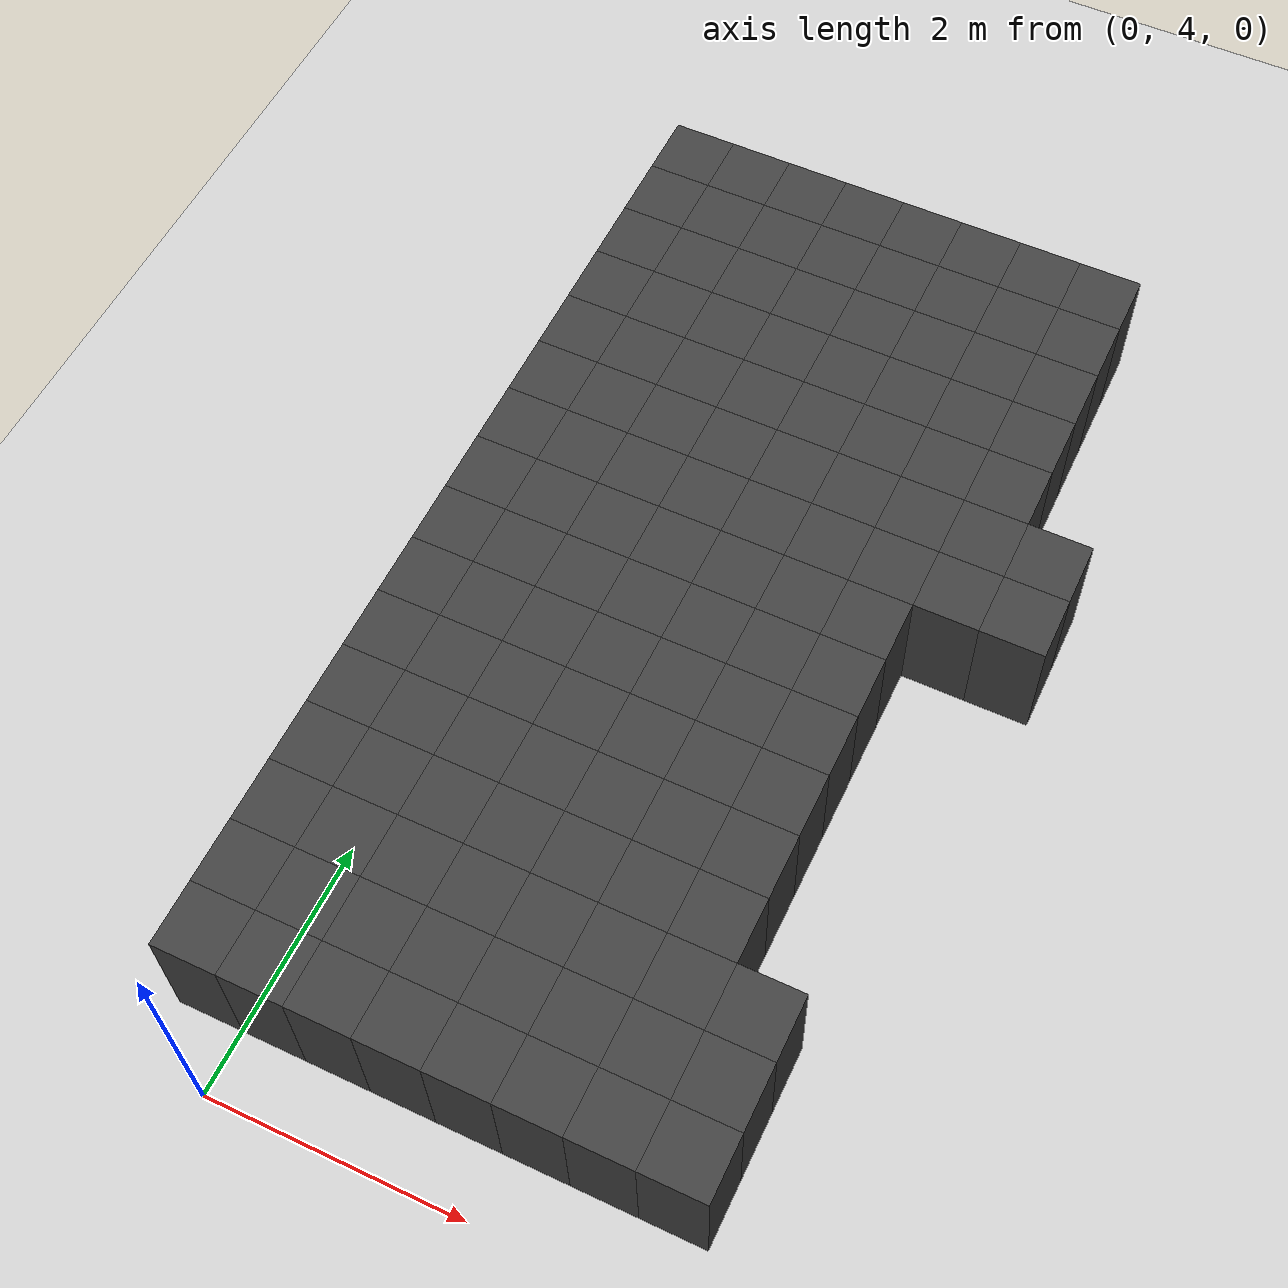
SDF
<sdf version="1.7">
 <world name="map_10726">
  <model name="ground_plane">
   <static>true</static>
   <link name="link">
    <collision name="collision">
     <geometry><plane><normal>0 0 1</normal><size>200 200</size></plane></geometry>
    </collision>
    <visual name="visual">
     <geometry><plane><normal>0 0 1</normal><size>200 200</size></plane></geometry>
     <material><ambient>0.8 0.8 0.8 1</ambient><diffuse>0.8 0.8 0.8 1</diffuse></material>
    </visual>
   </link>
  </model>
  <model name="maze_environment">
   <static>true</static>
   <link name="wall_24">
    <pose>-0.250 12.250 0.500 0 0 0</pose>
    <collision name="col"><geometry><box><size>0.5 0.5 1.0</size></box></geometry></collision>
    <visual name="vis">
     <geometry><box><size>0.5 0.5 1.0</size></box></geometry>
     <material><ambient>0.15 0.15 0.15 1</ambient><diffuse>0.25 0.25 0.25 1</diffuse></material>
    </visual>
   </link>
   <link name="wall_25">
    <pose>0.250 12.250 0.500 0 0 0</pose>
    <collision name="col"><geometry><box><size>0.5 0.5 1.0</size></box></geometry></collision>
    <visual name="vis">
     <geometry><box><size>0.5 0.5 1.0</size></box></geometry>
     <material><ambient>0.15 0.15 0.15 1</ambient><diffuse>0.25 0.25 0.25 1</diffuse></material>
    </visual>
   </link>
   <link name="wall_26">
    <pose>0.750 12.250 0.500 0 0 0</pose>
    <collision name="col"><geometry><box><size>0.5 0.5 1.0</size></box></geometry></collision>
    <visual name="vis">
     <geometry><box><size>0.5 0.5 1.0</size></box></geometry>
     <material><ambient>0.15 0.15 0.15 1</ambient><diffuse>0.25 0.25 0.25 1</diffuse></material>
    </visual>
   </link>
   <link name="wall_27">
    <pose>1.250 12.250 0.500 0 0 0</pose>
    <collision name="col"><geometry><box><size>0.5 0.5 1.0</size></box></geometry></collision>
    <visual name="vis">
     <geometry><box><size>0.5 0.5 1.0</size></box></geometry>
     <material><ambient>0.15 0.15 0.15 1</ambient><diffuse>0.25 0.25 0.25 1</diffuse></material>
    </visual>
   </link>
   <link name="wall_28">
    <pose>1.750 12.250 0.500 0 0 0</pose>
    <collision name="col"><geometry><box><size>0.5 0.5 1.0</size></box></geometry></collision>
    <visual name="vis">
     <geometry><box><size>0.5 0.5 1.0</size></box></geometry>
     <material><ambient>0.15 0.15 0.15 1</ambient><diffuse>0.25 0.25 0.25 1</diffuse></material>
    </visual>
   </link>
   <link name="wall_29">
    <pose>2.250 12.250 0.500 0 0 0</pose>
    <collision name="col"><geometry><box><size>0.5 0.5 1.0</size></box></geometry></collision>
    <visual name="vis">
     <geometry><box><size>0.5 0.5 1.0</size></box></geometry>
     <material><ambient>0.15 0.15 0.15 1</ambient><diffuse>0.25 0.25 0.25 1</diffuse></material>
    </visual>
   </link>
   <link name="wall_30">
    <pose>2.750 12.250 0.500 0 0 0</pose>
    <collision name="col"><geometry><box><size>0.5 0.5 1.0</size></box></geometry></collision>
    <visual name="vis">
     <geometry><box><size>0.5 0.5 1.0</size></box></geometry>
     <material><ambient>0.15 0.15 0.15 1</ambient><diffuse>0.25 0.25 0.25 1</diffuse></material>
    </visual>
   </link>
   <link name="wall_31">
    <pose>3.250 12.250 0.500 0 0 0</pose>
    <collision name="col"><geometry><box><size>0.5 0.5 1.0</size></box></geometry></collision>
    <visual name="vis">
     <geometry><box><size>0.5 0.5 1.0</size></box></geometry>
     <material><ambient>0.15 0.15 0.15 1</ambient><diffuse>0.25 0.25 0.25 1</diffuse></material>
    </visual>
   </link>
   <link name="wall_71">
    <pose>-0.250 11.750 0.500 0 0 0</pose>
    <collision name="col"><geometry><box><size>0.5 0.5 1.0</size></box></geometry></collision>
    <visual name="vis">
     <geometry><box><size>0.5 0.5 1.0</size></box></geometry>
     <material><ambient>0.15 0.15 0.15 1</ambient><diffuse>0.25 0.25 0.25 1</diffuse></material>
    </visual>
   </link>
   <link name="wall_72">
    <pose>0.250 11.750 0.500 0 0 0</pose>
    <collision name="col"><geometry><box><size>0.5 0.5 1.0</size></box></geometry></collision>
    <visual name="vis">
     <geometry><box><size>0.5 0.5 1.0</size></box></geometry>
     <material><ambient>0.15 0.15 0.15 1</ambient><diffuse>0.25 0.25 0.25 1</diffuse></material>
    </visual>
   </link>
   <link name="wall_73">
    <pose>0.750 11.750 0.500 0 0 0</pose>
    <collision name="col"><geometry><box><size>0.5 0.5 1.0</size></box></geometry></collision>
    <visual name="vis">
     <geometry><box><size>0.5 0.5 1.0</size></box></geometry>
     <material><ambient>0.15 0.15 0.15 1</ambient><diffuse>0.25 0.25 0.25 1</diffuse></material>
    </visual>
   </link>
   <link name="wall_74">
    <pose>1.250 11.750 0.500 0 0 0</pose>
    <collision name="col"><geometry><box><size>0.5 0.5 1.0</size></box></geometry></collision>
    <visual name="vis">
     <geometry><box><size>0.5 0.5 1.0</size></box></geometry>
     <material><ambient>0.15 0.15 0.15 1</ambient><diffuse>0.25 0.25 0.25 1</diffuse></material>
    </visual>
   </link>
   <link name="wall_75">
    <pose>1.750 11.750 0.500 0 0 0</pose>
    <collision name="col"><geometry><box><size>0.5 0.5 1.0</size></box></geometry></collision>
    <visual name="vis">
     <geometry><box><size>0.5 0.5 1.0</size></box></geometry>
     <material><ambient>0.15 0.15 0.15 1</ambient><diffuse>0.25 0.25 0.25 1</diffuse></material>
    </visual>
   </link>
   <link name="wall_76">
    <pose>2.250 11.750 0.500 0 0 0</pose>
    <collision name="col"><geometry><box><size>0.5 0.5 1.0</size></box></geometry></collision>
    <visual name="vis">
     <geometry><box><size>0.5 0.5 1.0</size></box></geometry>
     <material><ambient>0.15 0.15 0.15 1</ambient><diffuse>0.25 0.25 0.25 1</diffuse></material>
    </visual>
   </link>
   <link name="wall_77">
    <pose>2.750 11.750 0.500 0 0 0</pose>
    <collision name="col"><geometry><box><size>0.5 0.5 1.0</size></box></geometry></collision>
    <visual name="vis">
     <geometry><box><size>0.5 0.5 1.0</size></box></geometry>
     <material><ambient>0.15 0.15 0.15 1</ambient><diffuse>0.25 0.25 0.25 1</diffuse></material>
    </visual>
   </link>
   <link name="wall_78">
    <pose>3.250 11.750 0.500 0 0 0</pose>
    <collision name="col"><geometry><box><size>0.5 0.5 1.0</size></box></geometry></collision>
    <visual name="vis">
     <geometry><box><size>0.5 0.5 1.0</size></box></geometry>
     <material><ambient>0.15 0.15 0.15 1</ambient><diffuse>0.25 0.25 0.25 1</diffuse></material>
    </visual>
   </link>
   <link name="wall_118">
    <pose>-0.250 11.250 0.500 0 0 0</pose>
    <collision name="col"><geometry><box><size>0.5 0.5 1.0</size></box></geometry></collision>
    <visual name="vis">
     <geometry><box><size>0.5 0.5 1.0</size></box></geometry>
     <material><ambient>0.15 0.15 0.15 1</ambient><diffuse>0.25 0.25 0.25 1</diffuse></material>
    </visual>
   </link>
   <link name="wall_119">
    <pose>0.250 11.250 0.500 0 0 0</pose>
    <collision name="col"><geometry><box><size>0.5 0.5 1.0</size></box></geometry></collision>
    <visual name="vis">
     <geometry><box><size>0.5 0.5 1.0</size></box></geometry>
     <material><ambient>0.15 0.15 0.15 1</ambient><diffuse>0.25 0.25 0.25 1</diffuse></material>
    </visual>
   </link>
   <link name="wall_120">
    <pose>0.750 11.250 0.500 0 0 0</pose>
    <collision name="col"><geometry><box><size>0.5 0.5 1.0</size></box></geometry></collision>
    <visual name="vis">
     <geometry><box><size>0.5 0.5 1.0</size></box></geometry>
     <material><ambient>0.15 0.15 0.15 1</ambient><diffuse>0.25 0.25 0.25 1</diffuse></material>
    </visual>
   </link>
   <link name="wall_121">
    <pose>1.250 11.250 0.500 0 0 0</pose>
    <collision name="col"><geometry><box><size>0.5 0.5 1.0</size></box></geometry></collision>
    <visual name="vis">
     <geometry><box><size>0.5 0.5 1.0</size></box></geometry>
     <material><ambient>0.15 0.15 0.15 1</ambient><diffuse>0.25 0.25 0.25 1</diffuse></material>
    </visual>
   </link>
   <link name="wall_122">
    <pose>1.750 11.250 0.500 0 0 0</pose>
    <collision name="col"><geometry><box><size>0.5 0.5 1.0</size></box></geometry></collision>
    <visual name="vis">
     <geometry><box><size>0.5 0.5 1.0</size></box></geometry>
     <material><ambient>0.15 0.15 0.15 1</ambient><diffuse>0.25 0.25 0.25 1</diffuse></material>
    </visual>
   </link>
   <link name="wall_123">
    <pose>2.250 11.250 0.500 0 0 0</pose>
    <collision name="col"><geometry><box><size>0.5 0.5 1.0</size></box></geometry></collision>
    <visual name="vis">
     <geometry><box><size>0.5 0.5 1.0</size></box></geometry>
     <material><ambient>0.15 0.15 0.15 1</ambient><diffuse>0.25 0.25 0.25 1</diffuse></material>
    </visual>
   </link>
   <link name="wall_124">
    <pose>2.750 11.250 0.500 0 0 0</pose>
    <collision name="col"><geometry><box><size>0.5 0.5 1.0</size></box></geometry></collision>
    <visual name="vis">
     <geometry><box><size>0.5 0.5 1.0</size></box></geometry>
     <material><ambient>0.15 0.15 0.15 1</ambient><diffuse>0.25 0.25 0.25 1</diffuse></material>
    </visual>
   </link>
   <link name="wall_125">
    <pose>3.250 11.250 0.500 0 0 0</pose>
    <collision name="col"><geometry><box><size>0.5 0.5 1.0</size></box></geometry></collision>
    <visual name="vis">
     <geometry><box><size>0.5 0.5 1.0</size></box></geometry>
     <material><ambient>0.15 0.15 0.15 1</ambient><diffuse>0.25 0.25 0.25 1</diffuse></material>
    </visual>
   </link>
   <link name="wall_165">
    <pose>-0.250 10.750 0.500 0 0 0</pose>
    <collision name="col"><geometry><box><size>0.5 0.5 1.0</size></box></geometry></collision>
    <visual name="vis">
     <geometry><box><size>0.5 0.5 1.0</size></box></geometry>
     <material><ambient>0.15 0.15 0.15 1</ambient><diffuse>0.25 0.25 0.25 1</diffuse></material>
    </visual>
   </link>
   <link name="wall_166">
    <pose>0.250 10.750 0.500 0 0 0</pose>
    <collision name="col"><geometry><box><size>0.5 0.5 1.0</size></box></geometry></collision>
    <visual name="vis">
     <geometry><box><size>0.5 0.5 1.0</size></box></geometry>
     <material><ambient>0.15 0.15 0.15 1</ambient><diffuse>0.25 0.25 0.25 1</diffuse></material>
    </visual>
   </link>
   <link name="wall_167">
    <pose>0.750 10.750 0.500 0 0 0</pose>
    <collision name="col"><geometry><box><size>0.5 0.5 1.0</size></box></geometry></collision>
    <visual name="vis">
     <geometry><box><size>0.5 0.5 1.0</size></box></geometry>
     <material><ambient>0.15 0.15 0.15 1</ambient><diffuse>0.25 0.25 0.25 1</diffuse></material>
    </visual>
   </link>
   <link name="wall_168">
    <pose>1.250 10.750 0.500 0 0 0</pose>
    <collision name="col"><geometry><box><size>0.5 0.5 1.0</size></box></geometry></collision>
    <visual name="vis">
     <geometry><box><size>0.5 0.5 1.0</size></box></geometry>
     <material><ambient>0.15 0.15 0.15 1</ambient><diffuse>0.25 0.25 0.25 1</diffuse></material>
    </visual>
   </link>
   <link name="wall_169">
    <pose>1.750 10.750 0.500 0 0 0</pose>
    <collision name="col"><geometry><box><size>0.5 0.5 1.0</size></box></geometry></collision>
    <visual name="vis">
     <geometry><box><size>0.5 0.5 1.0</size></box></geometry>
     <material><ambient>0.15 0.15 0.15 1</ambient><diffuse>0.25 0.25 0.25 1</diffuse></material>
    </visual>
   </link>
   <link name="wall_170">
    <pose>2.250 10.750 0.500 0 0 0</pose>
    <collision name="col"><geometry><box><size>0.5 0.5 1.0</size></box></geometry></collision>
    <visual name="vis">
     <geometry><box><size>0.5 0.5 1.0</size></box></geometry>
     <material><ambient>0.15 0.15 0.15 1</ambient><diffuse>0.25 0.25 0.25 1</diffuse></material>
    </visual>
   </link>
   <link name="wall_171">
    <pose>2.750 10.750 0.500 0 0 0</pose>
    <collision name="col"><geometry><box><size>0.5 0.5 1.0</size></box></geometry></collision>
    <visual name="vis">
     <geometry><box><size>0.5 0.5 1.0</size></box></geometry>
     <material><ambient>0.15 0.15 0.15 1</ambient><diffuse>0.25 0.25 0.25 1</diffuse></material>
    </visual>
   </link>
   <link name="wall_172">
    <pose>3.250 10.750 0.500 0 0 0</pose>
    <collision name="col"><geometry><box><size>0.5 0.5 1.0</size></box></geometry></collision>
    <visual name="vis">
     <geometry><box><size>0.5 0.5 1.0</size></box></geometry>
     <material><ambient>0.15 0.15 0.15 1</ambient><diffuse>0.25 0.25 0.25 1</diffuse></material>
    </visual>
   </link>
   <link name="wall_214">
    <pose>-0.250 10.250 0.500 0 0 0</pose>
    <collision name="col"><geometry><box><size>0.5 0.5 1.0</size></box></geometry></collision>
    <visual name="vis">
     <geometry><box><size>0.5 0.5 1.0</size></box></geometry>
     <material><ambient>0.15 0.15 0.15 1</ambient><diffuse>0.25 0.25 0.25 1</diffuse></material>
    </visual>
   </link>
   <link name="wall_215">
    <pose>0.250 10.250 0.500 0 0 0</pose>
    <collision name="col"><geometry><box><size>0.5 0.5 1.0</size></box></geometry></collision>
    <visual name="vis">
     <geometry><box><size>0.5 0.5 1.0</size></box></geometry>
     <material><ambient>0.15 0.15 0.15 1</ambient><diffuse>0.25 0.25 0.25 1</diffuse></material>
    </visual>
   </link>
   <link name="wall_216">
    <pose>0.750 10.250 0.500 0 0 0</pose>
    <collision name="col"><geometry><box><size>0.5 0.5 1.0</size></box></geometry></collision>
    <visual name="vis">
     <geometry><box><size>0.5 0.5 1.0</size></box></geometry>
     <material><ambient>0.15 0.15 0.15 1</ambient><diffuse>0.25 0.25 0.25 1</diffuse></material>
    </visual>
   </link>
   <link name="wall_217">
    <pose>1.250 10.250 0.500 0 0 0</pose>
    <collision name="col"><geometry><box><size>0.5 0.5 1.0</size></box></geometry></collision>
    <visual name="vis">
     <geometry><box><size>0.5 0.5 1.0</size></box></geometry>
     <material><ambient>0.15 0.15 0.15 1</ambient><diffuse>0.25 0.25 0.25 1</diffuse></material>
    </visual>
   </link>
   <link name="wall_218">
    <pose>1.750 10.250 0.500 0 0 0</pose>
    <collision name="col"><geometry><box><size>0.5 0.5 1.0</size></box></geometry></collision>
    <visual name="vis">
     <geometry><box><size>0.5 0.5 1.0</size></box></geometry>
     <material><ambient>0.15 0.15 0.15 1</ambient><diffuse>0.25 0.25 0.25 1</diffuse></material>
    </visual>
   </link>
   <link name="wall_219">
    <pose>2.250 10.250 0.500 0 0 0</pose>
    <collision name="col"><geometry><box><size>0.5 0.5 1.0</size></box></geometry></collision>
    <visual name="vis">
     <geometry><box><size>0.5 0.5 1.0</size></box></geometry>
     <material><ambient>0.15 0.15 0.15 1</ambient><diffuse>0.25 0.25 0.25 1</diffuse></material>
    </visual>
   </link>
   <link name="wall_220">
    <pose>2.750 10.250 0.500 0 0 0</pose>
    <collision name="col"><geometry><box><size>0.5 0.5 1.0</size></box></geometry></collision>
    <visual name="vis">
     <geometry><box><size>0.5 0.5 1.0</size></box></geometry>
     <material><ambient>0.15 0.15 0.15 1</ambient><diffuse>0.25 0.25 0.25 1</diffuse></material>
    </visual>
   </link>
   <link name="wall_221">
    <pose>3.250 10.250 0.500 0 0 0</pose>
    <collision name="col"><geometry><box><size>0.5 0.5 1.0</size></box></geometry></collision>
    <visual name="vis">
     <geometry><box><size>0.5 0.5 1.0</size></box></geometry>
     <material><ambient>0.15 0.15 0.15 1</ambient><diffuse>0.25 0.25 0.25 1</diffuse></material>
    </visual>
   </link>
   <link name="wall_263">
    <pose>-0.250 9.750 0.500 0 0 0</pose>
    <collision name="col"><geometry><box><size>0.5 0.5 1.0</size></box></geometry></collision>
    <visual name="vis">
     <geometry><box><size>0.5 0.5 1.0</size></box></geometry>
     <material><ambient>0.15 0.15 0.15 1</ambient><diffuse>0.25 0.25 0.25 1</diffuse></material>
    </visual>
   </link>
   <link name="wall_264">
    <pose>0.250 9.750 0.500 0 0 0</pose>
    <collision name="col"><geometry><box><size>0.5 0.5 1.0</size></box></geometry></collision>
    <visual name="vis">
     <geometry><box><size>0.5 0.5 1.0</size></box></geometry>
     <material><ambient>0.15 0.15 0.15 1</ambient><diffuse>0.25 0.25 0.25 1</diffuse></material>
    </visual>
   </link>
   <link name="wall_265">
    <pose>0.750 9.750 0.500 0 0 0</pose>
    <collision name="col"><geometry><box><size>0.5 0.5 1.0</size></box></geometry></collision>
    <visual name="vis">
     <geometry><box><size>0.5 0.5 1.0</size></box></geometry>
     <material><ambient>0.15 0.15 0.15 1</ambient><diffuse>0.25 0.25 0.25 1</diffuse></material>
    </visual>
   </link>
   <link name="wall_266">
    <pose>1.250 9.750 0.500 0 0 0</pose>
    <collision name="col"><geometry><box><size>0.5 0.5 1.0</size></box></geometry></collision>
    <visual name="vis">
     <geometry><box><size>0.5 0.5 1.0</size></box></geometry>
     <material><ambient>0.15 0.15 0.15 1</ambient><diffuse>0.25 0.25 0.25 1</diffuse></material>
    </visual>
   </link>
   <link name="wall_267">
    <pose>1.750 9.750 0.500 0 0 0</pose>
    <collision name="col"><geometry><box><size>0.5 0.5 1.0</size></box></geometry></collision>
    <visual name="vis">
     <geometry><box><size>0.5 0.5 1.0</size></box></geometry>
     <material><ambient>0.15 0.15 0.15 1</ambient><diffuse>0.25 0.25 0.25 1</diffuse></material>
    </visual>
   </link>
   <link name="wall_268">
    <pose>2.250 9.750 0.500 0 0 0</pose>
    <collision name="col"><geometry><box><size>0.5 0.5 1.0</size></box></geometry></collision>
    <visual name="vis">
     <geometry><box><size>0.5 0.5 1.0</size></box></geometry>
     <material><ambient>0.15 0.15 0.15 1</ambient><diffuse>0.25 0.25 0.25 1</diffuse></material>
    </visual>
   </link>
   <link name="wall_269">
    <pose>2.750 9.750 0.500 0 0 0</pose>
    <collision name="col"><geometry><box><size>0.5 0.5 1.0</size></box></geometry></collision>
    <visual name="vis">
     <geometry><box><size>0.5 0.5 1.0</size></box></geometry>
     <material><ambient>0.15 0.15 0.15 1</ambient><diffuse>0.25 0.25 0.25 1</diffuse></material>
    </visual>
   </link>
   <link name="wall_270">
    <pose>3.250 9.750 0.500 0 0 0</pose>
    <collision name="col"><geometry><box><size>0.5 0.5 1.0</size></box></geometry></collision>
    <visual name="vis">
     <geometry><box><size>0.5 0.5 1.0</size></box></geometry>
     <material><ambient>0.15 0.15 0.15 1</ambient><diffuse>0.25 0.25 0.25 1</diffuse></material>
    </visual>
   </link>
   <link name="wall_271">
    <pose>3.750 9.750 0.500 0 0 0</pose>
    <collision name="col"><geometry><box><size>0.5 0.5 1.0</size></box></geometry></collision>
    <visual name="vis">
     <geometry><box><size>0.5 0.5 1.0</size></box></geometry>
     <material><ambient>0.15 0.15 0.15 1</ambient><diffuse>0.25 0.25 0.25 1</diffuse></material>
    </visual>
   </link>
   <link name="wall_312">
    <pose>-0.250 9.250 0.500 0 0 0</pose>
    <collision name="col"><geometry><box><size>0.5 0.5 1.0</size></box></geometry></collision>
    <visual name="vis">
     <geometry><box><size>0.5 0.5 1.0</size></box></geometry>
     <material><ambient>0.15 0.15 0.15 1</ambient><diffuse>0.25 0.25 0.25 1</diffuse></material>
    </visual>
   </link>
   <link name="wall_313">
    <pose>0.250 9.250 0.500 0 0 0</pose>
    <collision name="col"><geometry><box><size>0.5 0.5 1.0</size></box></geometry></collision>
    <visual name="vis">
     <geometry><box><size>0.5 0.5 1.0</size></box></geometry>
     <material><ambient>0.15 0.15 0.15 1</ambient><diffuse>0.25 0.25 0.25 1</diffuse></material>
    </visual>
   </link>
   <link name="wall_314">
    <pose>0.750 9.250 0.500 0 0 0</pose>
    <collision name="col"><geometry><box><size>0.5 0.5 1.0</size></box></geometry></collision>
    <visual name="vis">
     <geometry><box><size>0.5 0.5 1.0</size></box></geometry>
     <material><ambient>0.15 0.15 0.15 1</ambient><diffuse>0.25 0.25 0.25 1</diffuse></material>
    </visual>
   </link>
   <link name="wall_315">
    <pose>1.250 9.250 0.500 0 0 0</pose>
    <collision name="col"><geometry><box><size>0.5 0.5 1.0</size></box></geometry></collision>
    <visual name="vis">
     <geometry><box><size>0.5 0.5 1.0</size></box></geometry>
     <material><ambient>0.15 0.15 0.15 1</ambient><diffuse>0.25 0.25 0.25 1</diffuse></material>
    </visual>
   </link>
   <link name="wall_316">
    <pose>1.750 9.250 0.500 0 0 0</pose>
    <collision name="col"><geometry><box><size>0.5 0.5 1.0</size></box></geometry></collision>
    <visual name="vis">
     <geometry><box><size>0.5 0.5 1.0</size></box></geometry>
     <material><ambient>0.15 0.15 0.15 1</ambient><diffuse>0.25 0.25 0.25 1</diffuse></material>
    </visual>
   </link>
   <link name="wall_317">
    <pose>2.250 9.250 0.500 0 0 0</pose>
    <collision name="col"><geometry><box><size>0.5 0.5 1.0</size></box></geometry></collision>
    <visual name="vis">
     <geometry><box><size>0.5 0.5 1.0</size></box></geometry>
     <material><ambient>0.15 0.15 0.15 1</ambient><diffuse>0.25 0.25 0.25 1</diffuse></material>
    </visual>
   </link>
   <link name="wall_318">
    <pose>2.750 9.250 0.500 0 0 0</pose>
    <collision name="col"><geometry><box><size>0.5 0.5 1.0</size></box></geometry></collision>
    <visual name="vis">
     <geometry><box><size>0.5 0.5 1.0</size></box></geometry>
     <material><ambient>0.15 0.15 0.15 1</ambient><diffuse>0.25 0.25 0.25 1</diffuse></material>
    </visual>
   </link>
   <link name="wall_319">
    <pose>3.250 9.250 0.500 0 0 0</pose>
    <collision name="col"><geometry><box><size>0.5 0.5 1.0</size></box></geometry></collision>
    <visual name="vis">
     <geometry><box><size>0.5 0.5 1.0</size></box></geometry>
     <material><ambient>0.15 0.15 0.15 1</ambient><diffuse>0.25 0.25 0.25 1</diffuse></material>
    </visual>
   </link>
   <link name="wall_320">
    <pose>3.750 9.250 0.500 0 0 0</pose>
    <collision name="col"><geometry><box><size>0.5 0.5 1.0</size></box></geometry></collision>
    <visual name="vis">
     <geometry><box><size>0.5 0.5 1.0</size></box></geometry>
     <material><ambient>0.15 0.15 0.15 1</ambient><diffuse>0.25 0.25 0.25 1</diffuse></material>
    </visual>
   </link>
   <link name="wall_361">
    <pose>-0.250 8.750 0.500 0 0 0</pose>
    <collision name="col"><geometry><box><size>0.5 0.5 1.0</size></box></geometry></collision>
    <visual name="vis">
     <geometry><box><size>0.5 0.5 1.0</size></box></geometry>
     <material><ambient>0.15 0.15 0.15 1</ambient><diffuse>0.25 0.25 0.25 1</diffuse></material>
    </visual>
   </link>
   <link name="wall_362">
    <pose>0.250 8.750 0.500 0 0 0</pose>
    <collision name="col"><geometry><box><size>0.5 0.5 1.0</size></box></geometry></collision>
    <visual name="vis">
     <geometry><box><size>0.5 0.5 1.0</size></box></geometry>
     <material><ambient>0.15 0.15 0.15 1</ambient><diffuse>0.25 0.25 0.25 1</diffuse></material>
    </visual>
   </link>
   <link name="wall_363">
    <pose>0.750 8.750 0.500 0 0 0</pose>
    <collision name="col"><geometry><box><size>0.5 0.5 1.0</size></box></geometry></collision>
    <visual name="vis">
     <geometry><box><size>0.5 0.5 1.0</size></box></geometry>
     <material><ambient>0.15 0.15 0.15 1</ambient><diffuse>0.25 0.25 0.25 1</diffuse></material>
    </visual>
   </link>
   <link name="wall_364">
    <pose>1.250 8.750 0.500 0 0 0</pose>
    <collision name="col"><geometry><box><size>0.5 0.5 1.0</size></box></geometry></collision>
    <visual name="vis">
     <geometry><box><size>0.5 0.5 1.0</size></box></geometry>
     <material><ambient>0.15 0.15 0.15 1</ambient><diffuse>0.25 0.25 0.25 1</diffuse></material>
    </visual>
   </link>
   <link name="wall_365">
    <pose>1.750 8.750 0.500 0 0 0</pose>
    <collision name="col"><geometry><box><size>0.5 0.5 1.0</size></box></geometry></collision>
    <visual name="vis">
     <geometry><box><size>0.5 0.5 1.0</size></box></geometry>
     <material><ambient>0.15 0.15 0.15 1</ambient><diffuse>0.25 0.25 0.25 1</diffuse></material>
    </visual>
   </link>
   <link name="wall_366">
    <pose>2.250 8.750 0.500 0 0 0</pose>
    <collision name="col"><geometry><box><size>0.5 0.5 1.0</size></box></geometry></collision>
    <visual name="vis">
     <geometry><box><size>0.5 0.5 1.0</size></box></geometry>
     <material><ambient>0.15 0.15 0.15 1</ambient><diffuse>0.25 0.25 0.25 1</diffuse></material>
    </visual>
   </link>
   <link name="wall_367">
    <pose>2.750 8.750 0.500 0 0 0</pose>
    <collision name="col"><geometry><box><size>0.5 0.5 1.0</size></box></geometry></collision>
    <visual name="vis">
     <geometry><box><size>0.5 0.5 1.0</size></box></geometry>
     <material><ambient>0.15 0.15 0.15 1</ambient><diffuse>0.25 0.25 0.25 1</diffuse></material>
    </visual>
   </link>
   <link name="wall_402">
    <pose>-0.250 8.250 0.500 0 0 0</pose>
    <collision name="col"><geometry><box><size>0.5 0.5 1.0</size></box></geometry></collision>
    <visual name="vis">
     <geometry><box><size>0.5 0.5 1.0</size></box></geometry>
     <material><ambient>0.15 0.15 0.15 1</ambient><diffuse>0.25 0.25 0.25 1</diffuse></material>
    </visual>
   </link>
   <link name="wall_403">
    <pose>0.250 8.250 0.500 0 0 0</pose>
    <collision name="col"><geometry><box><size>0.5 0.5 1.0</size></box></geometry></collision>
    <visual name="vis">
     <geometry><box><size>0.5 0.5 1.0</size></box></geometry>
     <material><ambient>0.15 0.15 0.15 1</ambient><diffuse>0.25 0.25 0.25 1</diffuse></material>
    </visual>
   </link>
   <link name="wall_404">
    <pose>0.750 8.250 0.500 0 0 0</pose>
    <collision name="col"><geometry><box><size>0.5 0.5 1.0</size></box></geometry></collision>
    <visual name="vis">
     <geometry><box><size>0.5 0.5 1.0</size></box></geometry>
     <material><ambient>0.15 0.15 0.15 1</ambient><diffuse>0.25 0.25 0.25 1</diffuse></material>
    </visual>
   </link>
   <link name="wall_405">
    <pose>1.250 8.250 0.500 0 0 0</pose>
    <collision name="col"><geometry><box><size>0.5 0.5 1.0</size></box></geometry></collision>
    <visual name="vis">
     <geometry><box><size>0.5 0.5 1.0</size></box></geometry>
     <material><ambient>0.15 0.15 0.15 1</ambient><diffuse>0.25 0.25 0.25 1</diffuse></material>
    </visual>
   </link>
   <link name="wall_406">
    <pose>1.750 8.250 0.500 0 0 0</pose>
    <collision name="col"><geometry><box><size>0.5 0.5 1.0</size></box></geometry></collision>
    <visual name="vis">
     <geometry><box><size>0.5 0.5 1.0</size></box></geometry>
     <material><ambient>0.15 0.15 0.15 1</ambient><diffuse>0.25 0.25 0.25 1</diffuse></material>
    </visual>
   </link>
   <link name="wall_407">
    <pose>2.250 8.250 0.500 0 0 0</pose>
    <collision name="col"><geometry><box><size>0.5 0.5 1.0</size></box></geometry></collision>
    <visual name="vis">
     <geometry><box><size>0.5 0.5 1.0</size></box></geometry>
     <material><ambient>0.15 0.15 0.15 1</ambient><diffuse>0.25 0.25 0.25 1</diffuse></material>
    </visual>
   </link>
   <link name="wall_408">
    <pose>2.750 8.250 0.500 0 0 0</pose>
    <collision name="col"><geometry><box><size>0.5 0.5 1.0</size></box></geometry></collision>
    <visual name="vis">
     <geometry><box><size>0.5 0.5 1.0</size></box></geometry>
     <material><ambient>0.15 0.15 0.15 1</ambient><diffuse>0.25 0.25 0.25 1</diffuse></material>
    </visual>
   </link>
   <link name="wall_443">
    <pose>-0.250 7.750 0.500 0 0 0</pose>
    <collision name="col"><geometry><box><size>0.5 0.5 1.0</size></box></geometry></collision>
    <visual name="vis">
     <geometry><box><size>0.5 0.5 1.0</size></box></geometry>
     <material><ambient>0.15 0.15 0.15 1</ambient><diffuse>0.25 0.25 0.25 1</diffuse></material>
    </visual>
   </link>
   <link name="wall_444">
    <pose>0.250 7.750 0.500 0 0 0</pose>
    <collision name="col"><geometry><box><size>0.5 0.5 1.0</size></box></geometry></collision>
    <visual name="vis">
     <geometry><box><size>0.5 0.5 1.0</size></box></geometry>
     <material><ambient>0.15 0.15 0.15 1</ambient><diffuse>0.25 0.25 0.25 1</diffuse></material>
    </visual>
   </link>
   <link name="wall_445">
    <pose>0.750 7.750 0.500 0 0 0</pose>
    <collision name="col"><geometry><box><size>0.5 0.5 1.0</size></box></geometry></collision>
    <visual name="vis">
     <geometry><box><size>0.5 0.5 1.0</size></box></geometry>
     <material><ambient>0.15 0.15 0.15 1</ambient><diffuse>0.25 0.25 0.25 1</diffuse></material>
    </visual>
   </link>
   <link name="wall_446">
    <pose>1.250 7.750 0.500 0 0 0</pose>
    <collision name="col"><geometry><box><size>0.5 0.5 1.0</size></box></geometry></collision>
    <visual name="vis">
     <geometry><box><size>0.5 0.5 1.0</size></box></geometry>
     <material><ambient>0.15 0.15 0.15 1</ambient><diffuse>0.25 0.25 0.25 1</diffuse></material>
    </visual>
   </link>
   <link name="wall_447">
    <pose>1.750 7.750 0.500 0 0 0</pose>
    <collision name="col"><geometry><box><size>0.5 0.5 1.0</size></box></geometry></collision>
    <visual name="vis">
     <geometry><box><size>0.5 0.5 1.0</size></box></geometry>
     <material><ambient>0.15 0.15 0.15 1</ambient><diffuse>0.25 0.25 0.25 1</diffuse></material>
    </visual>
   </link>
   <link name="wall_448">
    <pose>2.250 7.750 0.500 0 0 0</pose>
    <collision name="col"><geometry><box><size>0.5 0.5 1.0</size></box></geometry></collision>
    <visual name="vis">
     <geometry><box><size>0.5 0.5 1.0</size></box></geometry>
     <material><ambient>0.15 0.15 0.15 1</ambient><diffuse>0.25 0.25 0.25 1</diffuse></material>
    </visual>
   </link>
   <link name="wall_449">
    <pose>2.750 7.750 0.500 0 0 0</pose>
    <collision name="col"><geometry><box><size>0.5 0.5 1.0</size></box></geometry></collision>
    <visual name="vis">
     <geometry><box><size>0.5 0.5 1.0</size></box></geometry>
     <material><ambient>0.15 0.15 0.15 1</ambient><diffuse>0.25 0.25 0.25 1</diffuse></material>
    </visual>
   </link>
   <link name="wall_484">
    <pose>-0.250 7.250 0.500 0 0 0</pose>
    <collision name="col"><geometry><box><size>0.5 0.5 1.0</size></box></geometry></collision>
    <visual name="vis">
     <geometry><box><size>0.5 0.5 1.0</size></box></geometry>
     <material><ambient>0.15 0.15 0.15 1</ambient><diffuse>0.25 0.25 0.25 1</diffuse></material>
    </visual>
   </link>
   <link name="wall_485">
    <pose>0.250 7.250 0.500 0 0 0</pose>
    <collision name="col"><geometry><box><size>0.5 0.5 1.0</size></box></geometry></collision>
    <visual name="vis">
     <geometry><box><size>0.5 0.5 1.0</size></box></geometry>
     <material><ambient>0.15 0.15 0.15 1</ambient><diffuse>0.25 0.25 0.25 1</diffuse></material>
    </visual>
   </link>
   <link name="wall_486">
    <pose>0.750 7.250 0.500 0 0 0</pose>
    <collision name="col"><geometry><box><size>0.5 0.5 1.0</size></box></geometry></collision>
    <visual name="vis">
     <geometry><box><size>0.5 0.5 1.0</size></box></geometry>
     <material><ambient>0.15 0.15 0.15 1</ambient><diffuse>0.25 0.25 0.25 1</diffuse></material>
    </visual>
   </link>
   <link name="wall_487">
    <pose>1.250 7.250 0.500 0 0 0</pose>
    <collision name="col"><geometry><box><size>0.5 0.5 1.0</size></box></geometry></collision>
    <visual name="vis">
     <geometry><box><size>0.5 0.5 1.0</size></box></geometry>
     <material><ambient>0.15 0.15 0.15 1</ambient><diffuse>0.25 0.25 0.25 1</diffuse></material>
    </visual>
   </link>
   <link name="wall_488">
    <pose>1.750 7.250 0.500 0 0 0</pose>
    <collision name="col"><geometry><box><size>0.5 0.5 1.0</size></box></geometry></collision>
    <visual name="vis">
     <geometry><box><size>0.5 0.5 1.0</size></box></geometry>
     <material><ambient>0.15 0.15 0.15 1</ambient><diffuse>0.25 0.25 0.25 1</diffuse></material>
    </visual>
   </link>
   <link name="wall_489">
    <pose>2.250 7.250 0.500 0 0 0</pose>
    <collision name="col"><geometry><box><size>0.5 0.5 1.0</size></box></geometry></collision>
    <visual name="vis">
     <geometry><box><size>0.5 0.5 1.0</size></box></geometry>
     <material><ambient>0.15 0.15 0.15 1</ambient><diffuse>0.25 0.25 0.25 1</diffuse></material>
    </visual>
   </link>
   <link name="wall_490">
    <pose>2.750 7.250 0.500 0 0 0</pose>
    <collision name="col"><geometry><box><size>0.5 0.5 1.0</size></box></geometry></collision>
    <visual name="vis">
     <geometry><box><size>0.5 0.5 1.0</size></box></geometry>
     <material><ambient>0.15 0.15 0.15 1</ambient><diffuse>0.25 0.25 0.25 1</diffuse></material>
    </visual>
   </link>
   <link name="wall_525">
    <pose>-0.250 6.750 0.500 0 0 0</pose>
    <collision name="col"><geometry><box><size>0.5 0.5 1.0</size></box></geometry></collision>
    <visual name="vis">
     <geometry><box><size>0.5 0.5 1.0</size></box></geometry>
     <material><ambient>0.15 0.15 0.15 1</ambient><diffuse>0.25 0.25 0.25 1</diffuse></material>
    </visual>
   </link>
   <link name="wall_526">
    <pose>0.250 6.750 0.500 0 0 0</pose>
    <collision name="col"><geometry><box><size>0.5 0.5 1.0</size></box></geometry></collision>
    <visual name="vis">
     <geometry><box><size>0.5 0.5 1.0</size></box></geometry>
     <material><ambient>0.15 0.15 0.15 1</ambient><diffuse>0.25 0.25 0.25 1</diffuse></material>
    </visual>
   </link>
   <link name="wall_527">
    <pose>0.750 6.750 0.500 0 0 0</pose>
    <collision name="col"><geometry><box><size>0.5 0.5 1.0</size></box></geometry></collision>
    <visual name="vis">
     <geometry><box><size>0.5 0.5 1.0</size></box></geometry>
     <material><ambient>0.15 0.15 0.15 1</ambient><diffuse>0.25 0.25 0.25 1</diffuse></material>
    </visual>
   </link>
   <link name="wall_528">
    <pose>1.250 6.750 0.500 0 0 0</pose>
    <collision name="col"><geometry><box><size>0.5 0.5 1.0</size></box></geometry></collision>
    <visual name="vis">
     <geometry><box><size>0.5 0.5 1.0</size></box></geometry>
     <material><ambient>0.15 0.15 0.15 1</ambient><diffuse>0.25 0.25 0.25 1</diffuse></material>
    </visual>
   </link>
   <link name="wall_529">
    <pose>1.750 6.750 0.500 0 0 0</pose>
    <collision name="col"><geometry><box><size>0.5 0.5 1.0</size></box></geometry></collision>
    <visual name="vis">
     <geometry><box><size>0.5 0.5 1.0</size></box></geometry>
     <material><ambient>0.15 0.15 0.15 1</ambient><diffuse>0.25 0.25 0.25 1</diffuse></material>
    </visual>
   </link>
   <link name="wall_530">
    <pose>2.250 6.750 0.500 0 0 0</pose>
    <collision name="col"><geometry><box><size>0.5 0.5 1.0</size></box></geometry></collision>
    <visual name="vis">
     <geometry><box><size>0.5 0.5 1.0</size></box></geometry>
     <material><ambient>0.15 0.15 0.15 1</ambient><diffuse>0.25 0.25 0.25 1</diffuse></material>
    </visual>
   </link>
   <link name="wall_531">
    <pose>2.750 6.750 0.500 0 0 0</pose>
    <collision name="col"><geometry><box><size>0.5 0.5 1.0</size></box></geometry></collision>
    <visual name="vis">
     <geometry><box><size>0.5 0.5 1.0</size></box></geometry>
     <material><ambient>0.15 0.15 0.15 1</ambient><diffuse>0.25 0.25 0.25 1</diffuse></material>
    </visual>
   </link>
   <link name="wall_566">
    <pose>-0.250 6.250 0.500 0 0 0</pose>
    <collision name="col"><geometry><box><size>0.5 0.5 1.0</size></box></geometry></collision>
    <visual name="vis">
     <geometry><box><size>0.5 0.5 1.0</size></box></geometry>
     <material><ambient>0.15 0.15 0.15 1</ambient><diffuse>0.25 0.25 0.25 1</diffuse></material>
    </visual>
   </link>
   <link name="wall_567">
    <pose>0.250 6.250 0.500 0 0 0</pose>
    <collision name="col"><geometry><box><size>0.5 0.5 1.0</size></box></geometry></collision>
    <visual name="vis">
     <geometry><box><size>0.5 0.5 1.0</size></box></geometry>
     <material><ambient>0.15 0.15 0.15 1</ambient><diffuse>0.25 0.25 0.25 1</diffuse></material>
    </visual>
   </link>
   <link name="wall_568">
    <pose>0.750 6.250 0.500 0 0 0</pose>
    <collision name="col"><geometry><box><size>0.5 0.5 1.0</size></box></geometry></collision>
    <visual name="vis">
     <geometry><box><size>0.5 0.5 1.0</size></box></geometry>
     <material><ambient>0.15 0.15 0.15 1</ambient><diffuse>0.25 0.25 0.25 1</diffuse></material>
    </visual>
   </link>
   <link name="wall_569">
    <pose>1.250 6.250 0.500 0 0 0</pose>
    <collision name="col"><geometry><box><size>0.5 0.5 1.0</size></box></geometry></collision>
    <visual name="vis">
     <geometry><box><size>0.5 0.5 1.0</size></box></geometry>
     <material><ambient>0.15 0.15 0.15 1</ambient><diffuse>0.25 0.25 0.25 1</diffuse></material>
    </visual>
   </link>
   <link name="wall_570">
    <pose>1.750 6.250 0.500 0 0 0</pose>
    <collision name="col"><geometry><box><size>0.5 0.5 1.0</size></box></geometry></collision>
    <visual name="vis">
     <geometry><box><size>0.5 0.5 1.0</size></box></geometry>
     <material><ambient>0.15 0.15 0.15 1</ambient><diffuse>0.25 0.25 0.25 1</diffuse></material>
    </visual>
   </link>
   <link name="wall_571">
    <pose>2.250 6.250 0.500 0 0 0</pose>
    <collision name="col"><geometry><box><size>0.5 0.5 1.0</size></box></geometry></collision>
    <visual name="vis">
     <geometry><box><size>0.5 0.5 1.0</size></box></geometry>
     <material><ambient>0.15 0.15 0.15 1</ambient><diffuse>0.25 0.25 0.25 1</diffuse></material>
    </visual>
   </link>
   <link name="wall_572">
    <pose>2.750 6.250 0.500 0 0 0</pose>
    <collision name="col"><geometry><box><size>0.5 0.5 1.0</size></box></geometry></collision>
    <visual name="vis">
     <geometry><box><size>0.5 0.5 1.0</size></box></geometry>
     <material><ambient>0.15 0.15 0.15 1</ambient><diffuse>0.25 0.25 0.25 1</diffuse></material>
    </visual>
   </link>
   <link name="wall_607">
    <pose>-0.250 5.750 0.500 0 0 0</pose>
    <collision name="col"><geometry><box><size>0.5 0.5 1.0</size></box></geometry></collision>
    <visual name="vis">
     <geometry><box><size>0.5 0.5 1.0</size></box></geometry>
     <material><ambient>0.15 0.15 0.15 1</ambient><diffuse>0.25 0.25 0.25 1</diffuse></material>
    </visual>
   </link>
   <link name="wall_608">
    <pose>0.250 5.750 0.500 0 0 0</pose>
    <collision name="col"><geometry><box><size>0.5 0.5 1.0</size></box></geometry></collision>
    <visual name="vis">
     <geometry><box><size>0.5 0.5 1.0</size></box></geometry>
     <material><ambient>0.15 0.15 0.15 1</ambient><diffuse>0.25 0.25 0.25 1</diffuse></material>
    </visual>
   </link>
   <link name="wall_609">
    <pose>0.750 5.750 0.500 0 0 0</pose>
    <collision name="col"><geometry><box><size>0.5 0.5 1.0</size></box></geometry></collision>
    <visual name="vis">
     <geometry><box><size>0.5 0.5 1.0</size></box></geometry>
     <material><ambient>0.15 0.15 0.15 1</ambient><diffuse>0.25 0.25 0.25 1</diffuse></material>
    </visual>
   </link>
   <link name="wall_610">
    <pose>1.250 5.750 0.500 0 0 0</pose>
    <collision name="col"><geometry><box><size>0.5 0.5 1.0</size></box></geometry></collision>
    <visual name="vis">
     <geometry><box><size>0.5 0.5 1.0</size></box></geometry>
     <material><ambient>0.15 0.15 0.15 1</ambient><diffuse>0.25 0.25 0.25 1</diffuse></material>
    </visual>
   </link>
   <link name="wall_611">
    <pose>1.750 5.750 0.500 0 0 0</pose>
    <collision name="col"><geometry><box><size>0.5 0.5 1.0</size></box></geometry></collision>
    <visual name="vis">
     <geometry><box><size>0.5 0.5 1.0</size></box></geometry>
     <material><ambient>0.15 0.15 0.15 1</ambient><diffuse>0.25 0.25 0.25 1</diffuse></material>
    </visual>
   </link>
   <link name="wall_612">
    <pose>2.250 5.750 0.500 0 0 0</pose>
    <collision name="col"><geometry><box><size>0.5 0.5 1.0</size></box></geometry></collision>
    <visual name="vis">
     <geometry><box><size>0.5 0.5 1.0</size></box></geometry>
     <material><ambient>0.15 0.15 0.15 1</ambient><diffuse>0.25 0.25 0.25 1</diffuse></material>
    </visual>
   </link>
   <link name="wall_613">
    <pose>2.750 5.750 0.500 0 0 0</pose>
    <collision name="col"><geometry><box><size>0.5 0.5 1.0</size></box></geometry></collision>
    <visual name="vis">
     <geometry><box><size>0.5 0.5 1.0</size></box></geometry>
     <material><ambient>0.15 0.15 0.15 1</ambient><diffuse>0.25 0.25 0.25 1</diffuse></material>
    </visual>
   </link>
   <link name="wall_614">
    <pose>3.250 5.750 0.500 0 0 0</pose>
    <collision name="col"><geometry><box><size>0.5 0.5 1.0</size></box></geometry></collision>
    <visual name="vis">
     <geometry><box><size>0.5 0.5 1.0</size></box></geometry>
     <material><ambient>0.15 0.15 0.15 1</ambient><diffuse>0.25 0.25 0.25 1</diffuse></material>
    </visual>
   </link>
   <link name="wall_655">
    <pose>-0.250 5.250 0.500 0 0 0</pose>
    <collision name="col"><geometry><box><size>0.5 0.5 1.0</size></box></geometry></collision>
    <visual name="vis">
     <geometry><box><size>0.5 0.5 1.0</size></box></geometry>
     <material><ambient>0.15 0.15 0.15 1</ambient><diffuse>0.25 0.25 0.25 1</diffuse></material>
    </visual>
   </link>
   <link name="wall_656">
    <pose>0.250 5.250 0.500 0 0 0</pose>
    <collision name="col"><geometry><box><size>0.5 0.5 1.0</size></box></geometry></collision>
    <visual name="vis">
     <geometry><box><size>0.5 0.5 1.0</size></box></geometry>
     <material><ambient>0.15 0.15 0.15 1</ambient><diffuse>0.25 0.25 0.25 1</diffuse></material>
    </visual>
   </link>
   <link name="wall_657">
    <pose>0.750 5.250 0.500 0 0 0</pose>
    <collision name="col"><geometry><box><size>0.5 0.5 1.0</size></box></geometry></collision>
    <visual name="vis">
     <geometry><box><size>0.5 0.5 1.0</size></box></geometry>
     <material><ambient>0.15 0.15 0.15 1</ambient><diffuse>0.25 0.25 0.25 1</diffuse></material>
    </visual>
   </link>
   <link name="wall_658">
    <pose>1.250 5.250 0.500 0 0 0</pose>
    <collision name="col"><geometry><box><size>0.5 0.5 1.0</size></box></geometry></collision>
    <visual name="vis">
     <geometry><box><size>0.5 0.5 1.0</size></box></geometry>
     <material><ambient>0.15 0.15 0.15 1</ambient><diffuse>0.25 0.25 0.25 1</diffuse></material>
    </visual>
   </link>
   <link name="wall_659">
    <pose>1.750 5.250 0.500 0 0 0</pose>
    <collision name="col"><geometry><box><size>0.5 0.5 1.0</size></box></geometry></collision>
    <visual name="vis">
     <geometry><box><size>0.5 0.5 1.0</size></box></geometry>
     <material><ambient>0.15 0.15 0.15 1</ambient><diffuse>0.25 0.25 0.25 1</diffuse></material>
    </visual>
   </link>
   <link name="wall_660">
    <pose>2.250 5.250 0.500 0 0 0</pose>
    <collision name="col"><geometry><box><size>0.5 0.5 1.0</size></box></geometry></collision>
    <visual name="vis">
     <geometry><box><size>0.5 0.5 1.0</size></box></geometry>
     <material><ambient>0.15 0.15 0.15 1</ambient><diffuse>0.25 0.25 0.25 1</diffuse></material>
    </visual>
   </link>
   <link name="wall_661">
    <pose>2.750 5.250 0.500 0 0 0</pose>
    <collision name="col"><geometry><box><size>0.5 0.5 1.0</size></box></geometry></collision>
    <visual name="vis">
     <geometry><box><size>0.5 0.5 1.0</size></box></geometry>
     <material><ambient>0.15 0.15 0.15 1</ambient><diffuse>0.25 0.25 0.25 1</diffuse></material>
    </visual>
   </link>
   <link name="wall_662">
    <pose>3.250 5.250 0.500 0 0 0</pose>
    <collision name="col"><geometry><box><size>0.5 0.5 1.0</size></box></geometry></collision>
    <visual name="vis">
     <geometry><box><size>0.5 0.5 1.0</size></box></geometry>
     <material><ambient>0.15 0.15 0.15 1</ambient><diffuse>0.25 0.25 0.25 1</diffuse></material>
    </visual>
   </link>
   <link name="wall_703">
    <pose>-0.250 4.750 0.500 0 0 0</pose>
    <collision name="col"><geometry><box><size>0.5 0.5 1.0</size></box></geometry></collision>
    <visual name="vis">
     <geometry><box><size>0.5 0.5 1.0</size></box></geometry>
     <material><ambient>0.15 0.15 0.15 1</ambient><diffuse>0.25 0.25 0.25 1</diffuse></material>
    </visual>
   </link>
   <link name="wall_704">
    <pose>0.250 4.750 0.500 0 0 0</pose>
    <collision name="col"><geometry><box><size>0.5 0.5 1.0</size></box></geometry></collision>
    <visual name="vis">
     <geometry><box><size>0.5 0.5 1.0</size></box></geometry>
     <material><ambient>0.15 0.15 0.15 1</ambient><diffuse>0.25 0.25 0.25 1</diffuse></material>
    </visual>
   </link>
   <link name="wall_705">
    <pose>0.750 4.750 0.500 0 0 0</pose>
    <collision name="col"><geometry><box><size>0.5 0.5 1.0</size></box></geometry></collision>
    <visual name="vis">
     <geometry><box><size>0.5 0.5 1.0</size></box></geometry>
     <material><ambient>0.15 0.15 0.15 1</ambient><diffuse>0.25 0.25 0.25 1</diffuse></material>
    </visual>
   </link>
   <link name="wall_706">
    <pose>1.250 4.750 0.500 0 0 0</pose>
    <collision name="col"><geometry><box><size>0.5 0.5 1.0</size></box></geometry></collision>
    <visual name="vis">
     <geometry><box><size>0.5 0.5 1.0</size></box></geometry>
     <material><ambient>0.15 0.15 0.15 1</ambient><diffuse>0.25 0.25 0.25 1</diffuse></material>
    </visual>
   </link>
   <link name="wall_707">
    <pose>1.750 4.750 0.500 0 0 0</pose>
    <collision name="col"><geometry><box><size>0.5 0.5 1.0</size></box></geometry></collision>
    <visual name="vis">
     <geometry><box><size>0.5 0.5 1.0</size></box></geometry>
     <material><ambient>0.15 0.15 0.15 1</ambient><diffuse>0.25 0.25 0.25 1</diffuse></material>
    </visual>
   </link>
   <link name="wall_708">
    <pose>2.250 4.750 0.500 0 0 0</pose>
    <collision name="col"><geometry><box><size>0.5 0.5 1.0</size></box></geometry></collision>
    <visual name="vis">
     <geometry><box><size>0.5 0.5 1.0</size></box></geometry>
     <material><ambient>0.15 0.15 0.15 1</ambient><diffuse>0.25 0.25 0.25 1</diffuse></material>
    </visual>
   </link>
   <link name="wall_709">
    <pose>2.750 4.750 0.500 0 0 0</pose>
    <collision name="col"><geometry><box><size>0.5 0.5 1.0</size></box></geometry></collision>
    <visual name="vis">
     <geometry><box><size>0.5 0.5 1.0</size></box></geometry>
     <material><ambient>0.15 0.15 0.15 1</ambient><diffuse>0.25 0.25 0.25 1</diffuse></material>
    </visual>
   </link>
   <link name="wall_710">
    <pose>3.250 4.750 0.500 0 0 0</pose>
    <collision name="col"><geometry><box><size>0.5 0.5 1.0</size></box></geometry></collision>
    <visual name="vis">
     <geometry><box><size>0.5 0.5 1.0</size></box></geometry>
     <material><ambient>0.15 0.15 0.15 1</ambient><diffuse>0.25 0.25 0.25 1</diffuse></material>
    </visual>
   </link>
  </model>
 </world>
</sdf>
